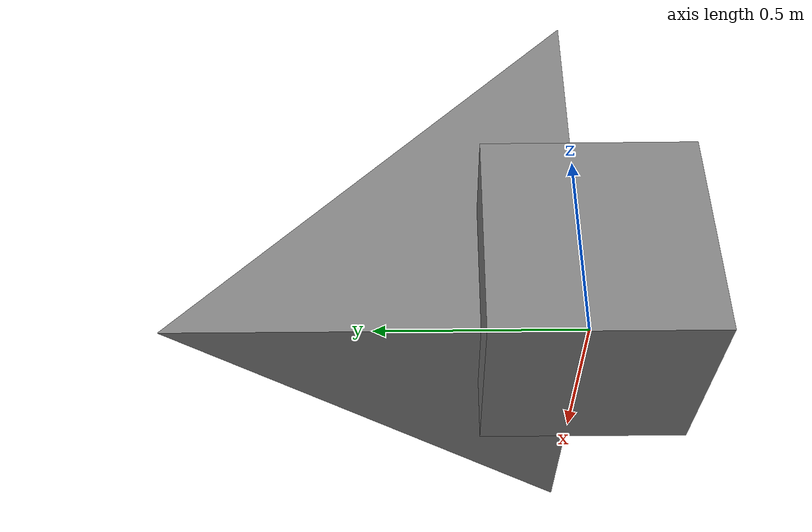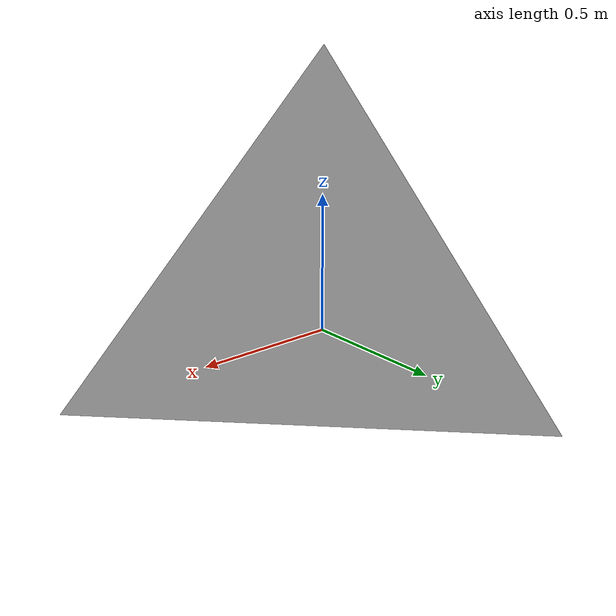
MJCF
<mujoco model="contact_dynamic_box_mesh">
  <option gravity="0 0 -9.81" timestep="0.005"/>
  <asset>
    <mesh name="tetra" vertex="0 0 0 1 0 0 0 1 0 0 0 1"
          face="0 2 1 0 1 3 0 3 2 1 2 3"/>
  </asset>
  <contact>
    <pair geom1="mesh_static" geom2="box_drop"/>
  </contact>
  <worldbody>
    <geom name="mesh_static" type="mesh" mesh="tetra"/>
    <body name="box_body" pos="0 0 0.1">
      <freejoint/>
      <inertial pos="0 0 0" mass="1" diaginertia="0.0416667 0.0416667 0.0416667"/>
      <geom name="box_drop" type="box" size="0.25 0.25 0.25"/>
    </body>
  </worldbody>
</mujoco>
